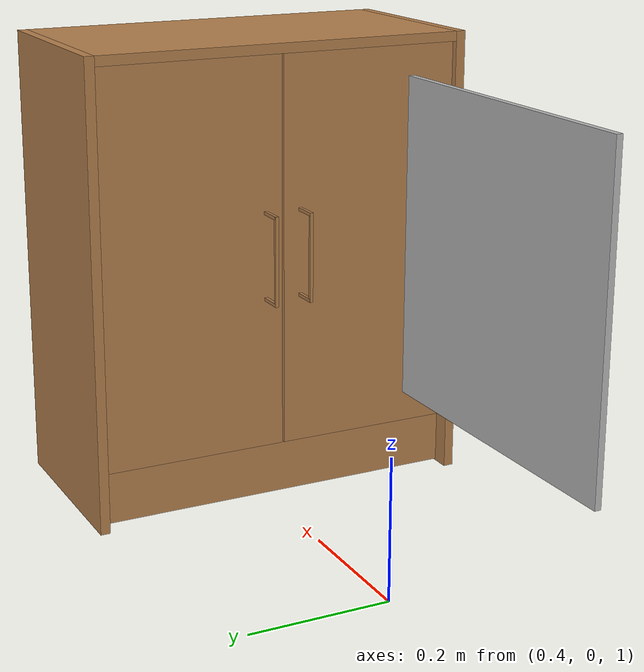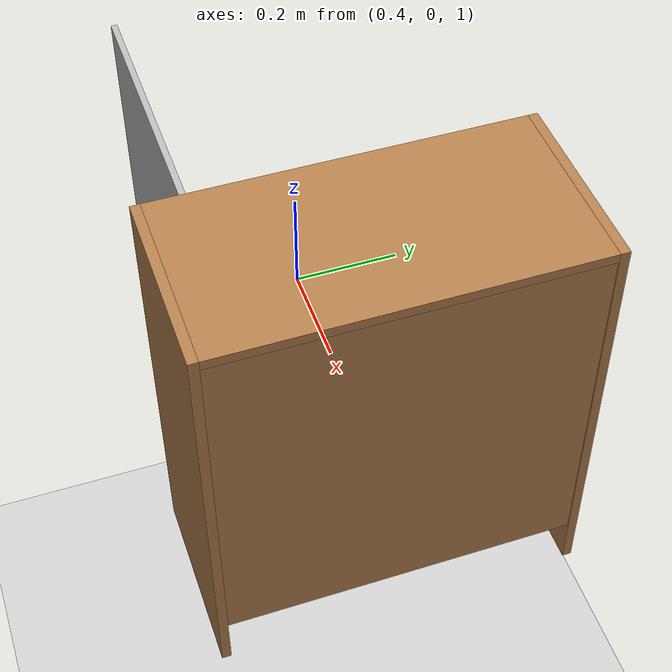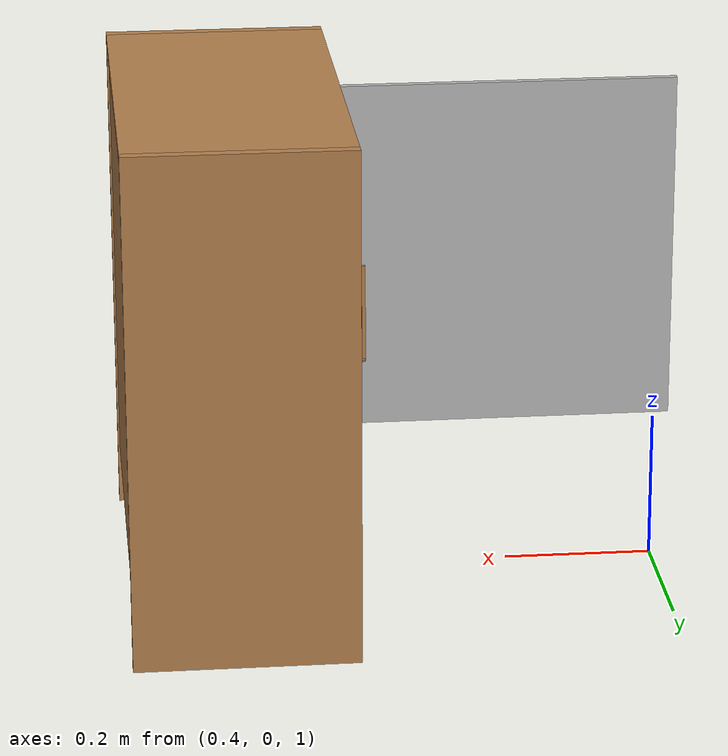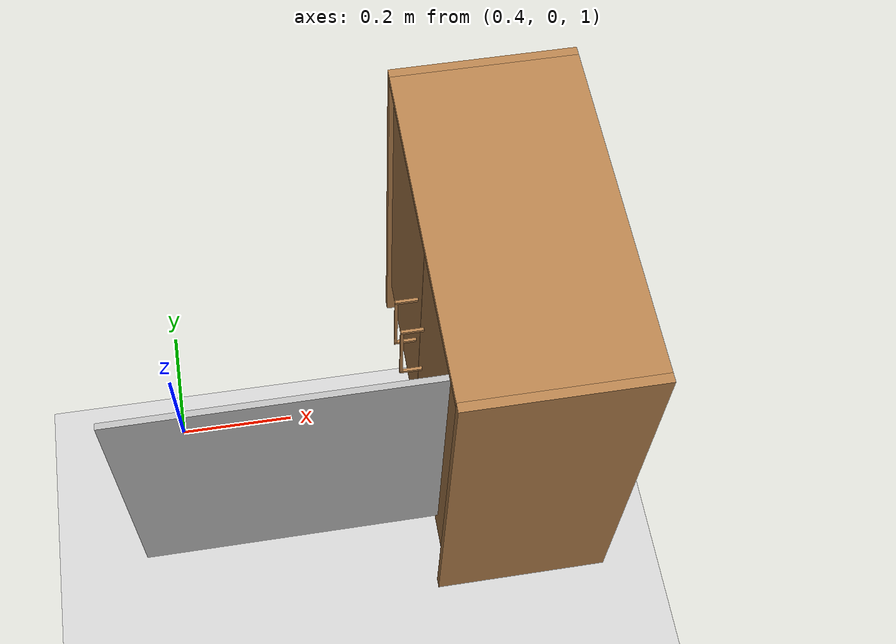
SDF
<sdf version="1.6">
 <world name="default">
  <scene>
   <ambient>0.2 0.2 0.2 1</ambient>
   <background>1 1 1 1</background>
   <shadows>0</shadows>
   <grid>0</grid>
   <origin_visual>0</origin_visual>
  </scene>
  <gravity>0 0 -9.8</gravity>
  <magnetic_field>6e-06 2.3e-05 -4.2e-05</magnetic_field>
  <atmosphere type="adiabatic"/>
  <physics name="dart_2ms" default="1" type="dart">
   <max_step_size>0.002</max_step_size>
   <real_time_factor>1</real_time_factor>
   <real_time_update_rate>500</real_time_update_rate>
  </physics>
  <spherical_coordinates>
   <surface_model>EARTH_WGS84</surface_model>
   <latitude_deg>0</latitude_deg>
   <longitude_deg>0</longitude_deg>
   <elevation>0</elevation>
   <heading_deg>0</heading_deg>
  </spherical_coordinates>
  <model name="ground_plane">
   <static>1</static>
   <link name="ground_plane::link">
    <collision name="collision">
     <geometry><plane><normal>0 0 1</normal><size>100 100</size></plane></geometry>
     <surface>
      <contact><collide_bitmask>65535</collide_bitmask></contact>
      <friction><ode><mu>100</mu><mu2>50</mu2></ode></friction>
     </surface>
    </collision>
    <visual name="visual">
     <cast_shadows>0</cast_shadows>
     <geometry><plane><normal>0 0 1</normal><size>100 100</size></plane></geometry>
     <material>
      <script><uri>file://media/materials/scripts/gazebo.material</uri><name>Gazebo/Grey</name></script>
     </material>
    </visual>
   </link>
   <pose>-0.799546 0.216315 0 0 -0 0</pose>
  </model>
  <light name="user_point_light_0" type="point">
   <pose>-1.13416 -1.8808 1 0 -0 0</pose>
   <diffuse>0.5 0.5 0.5 1</diffuse>
   <specular>0.1 0.1 0.1 1</specular>
   <attenuation>
    <range>20</range>
    <constant>0.5</constant>
    <linear>0.01</linear>
    <quadratic>0.001</quadratic>
   </attenuation>
   <cast_shadows>0</cast_shadows>
   <direction>0 0 -1</direction>
  </light>
  <model name="cabinet_door">
   <link name="cabinet">
    <pose>0 0 0.35 0 -0 0</pose>
    <inertial>
     <mass>16</mass>
     <inertia><ixx>1.59</ixx><ixy>0</ixy><ixz>0</ixz><iyy>1.12</iyy><iyz>0</iyz><izz>0.91</izz></inertia>
    </inertial>
    <collision name="back">
     <pose>-0.14 0 0.035 0 -0 0</pose>
     <geometry><box><size>0.015 0.585 0.6</size></box></geometry>
    </collision>
    <visual name="visual1">
     <pose>-0.14 0 0.035 0 -0 0</pose>
     <geometry><box><size>0.015 0.585 0.6</size></box></geometry>
     <material>
      <script><uri>file://media/materials/scripts/gazebo.material</uri><name>Gazebo/Wood</name></script>
     </material>
    </visual>
    <collision name="left_side">
     <pose>0 -0.2925 0 0 -0 0</pose>
     <geometry><box><size>0.3 0.015 0.7</size></box></geometry>
    </collision>
    <visual name="visual2">
     <pose>0 -0.2925 0 0 -0 0</pose>
     <geometry><box><size>0.3 0.015 0.7</size></box></geometry>
     <material>
      <script><uri>file://media/materials/scripts/gazebo.material</uri><name>Gazebo/Wood</name></script>
     </material>
    </visual>
    <collision name="right_side">
     <pose>0 0.2925 0 0 -0 0</pose>
     <geometry><box><size>0.3 0.015 0.7</size></box></geometry>
    </collision>
    <visual name="visual3">
     <pose>0 0.2925 0 0 -0 0</pose>
     <geometry><box><size>0.3 0.015 0.7</size></box></geometry>
     <material>
      <script><uri>file://media/materials/scripts/gazebo.material</uri><name>Gazebo/Wood</name></script>
     </material>
    </visual>
    <collision name="bottom">
     <pose>-0.002 0 -0.2525 0 -0 0</pose>
     <geometry><box><size>0.26 0.57 0.015</size></box></geometry>
    </collision>
    <visual name="visual4">
     <pose>-0.002 0 -0.2525 0 -0 0</pose>
     <geometry><box><size>0.26 0.57 0.015</size></box></geometry>
     <material>
      <script><uri>file://media/materials/scripts/gazebo.material</uri><name>Gazebo/Wood</name></script>
     </material>
    </visual>
    <collision name="top">
     <pose>0 0 0.3425 0 -0 0</pose>
     <geometry><box><size>0.3 0.57 0.015</size></box></geometry>
    </collision>
    <visual name="visual5">
     <pose>0 0 0.3425 0 -0 0</pose>
     <geometry><box><size>0.3 0.57 0.015</size></box></geometry>
     <material>
      <script><uri>file://media/materials/scripts/gazebo.material</uri><name>Gazebo/Wood</name></script>
     </material>
    </visual>
    <collision name="middle_shelf">
     <pose>-0.002 0 0.0475 0 -0 0</pose>
     <geometry><box><size>0.26 0.57 0.015</size></box></geometry>
    </collision>
    <visual name="visual6">
     <pose>-0.002 0 0.0475 0 -0 0</pose>
     <geometry><box><size>0.26 0.57 0.015</size></box></geometry>
     <material>
      <script><uri>file://media/materials/scripts/gazebo.material</uri><name>Gazebo/Wood</name></script>
     </material>
    </visual>
    <collision name="low_front">
     <pose>0.115 0 -0.3025 0 -0 0</pose>
     <geometry><box><size>0.015 0.57 0.09</size></box></geometry>
    </collision>
    <visual name="visual7">
     <pose>0.115 0 -0.3025 0 -0 0</pose>
     <geometry><box><size>0.015 0.57 0.09</size></box></geometry>
     <material>
      <script><uri>file://media/materials/scripts/gazebo.material</uri><name>Gazebo/Wood</name></script>
     </material>
    </visual>
   </link>
   <link name="right_door">
    <pose>0.135 0.2835 0.3875 0 -0 0</pose>
    <inertial>
     <mass>1.7</mass>
     <pose>0 -0.141 0 0 -0 0</pose>
     <inertia><ixx>0.06</ixx><ixy>0</ixy><ixz>0</ixz><iyy>0.49</iyy><iyz>0</iyz><izz>0.111</izz></inertia>
    </inertial>
    <collision name="right_face">
     <pose>0 -0.141 0 0 -0 0</pose>
     <geometry><box><size>0.015 0.282 0.595</size></box></geometry>
    </collision>
    <visual name="visual8">
     <pose>0 -0.141 0 0 -0 0</pose>
     <geometry><box><size>0.015 0.282 0.595</size></box></geometry>
     <material>
      <script><uri>file://media/materials/scripts/gazebo.material</uri><name>Gazebo/Wood</name></script>
     </material>
    </visual>
    <collision name="right_handle">
     <pose>0.04304 -0.2555 0 0 -0 0</pose>
     <geometry><box><size>0.005 0.005 0.136</size></box></geometry>
    </collision>
    <visual name="visual9">
     <pose>0.04304 -0.2555 0 0 -0 0</pose>
     <geometry><box><size>0.005 0.005 0.136</size></box></geometry>
     <material>
      <script><uri>file://media/materials/scripts/gazebo.material</uri><name>Gazebo/Wood</name></script>
     </material>
    </visual>
    <collision name="right_handle_up">
     <pose>0.02475 -0.2555 0.0656 0 -0 0</pose>
     <geometry><box><size>0.04 0.005 0.005</size></box></geometry>
    </collision>
    <visual name="visual10">
     <pose>0.02475 -0.2555 0.0656 0 -0 0</pose>
     <geometry><box><size>0.04 0.005 0.005</size></box></geometry>
     <material>
      <script><uri>file://media/materials/scripts/gazebo.material</uri><name>Gazebo/Wood</name></script>
     </material>
    </visual>
    <collision name="right_handle_bo">
     <pose>0.02475 -0.2555 -0.06542 0 -0 0</pose>
     <geometry><box><size>0.04 0.005 0.005</size></box></geometry>
    </collision>
    <visual name="visual11">
     <pose>0.02475 -0.2555 -0.06542 0 -0 0</pose>
     <geometry><box><size>0.04 0.005 0.005</size></box></geometry>
     <material>
      <script><uri>file://media/materials/scripts/gazebo.material</uri><name>Gazebo/Wood</name></script>
     </material>
    </visual>
    <visual name="visual_marker_0">
     <pose>0.007 -0.07 0 1.57075 0 1.57075</pose>
     <geometry><mesh><uri>model://marker_0/meshes/marker_0.dae</uri></mesh></geometry>
    </visual>
   </link>
   <joint name="right_joint" type="revolute">
    <parent>cabinet</parent>
    <child>right_door</child>
    <axis>
     <xyz>0 0 1</xyz>
     <limit><lower>-0.001</lower><upper>1.58</upper></limit>
     <dynamics>
      <damping>0.5</damping>
      <friction>0.1</friction>
      <spring_reference>0</spring_reference>
      <spring_stiffness>0</spring_stiffness>
     </dynamics>
     <use_parent_model_frame>1</use_parent_model_frame>
    </axis>
   </joint>
   <link name="left_door">
    <pose>0.135 -0.2835 0.3875 0 -0 0</pose>
    <inertial>
     <mass>1</mass>
     <pose>0 0.141 0 0 -0 0</pose>
     <inertia><ixx>0.06</ixx><ixy>0</ixy><ixz>0</ixz><iyy>0.49</iyy><iyz>0</iyz><izz>0.111</izz></inertia>
    </inertial>
    <collision name="left_face">
     <pose>0 0.141 0 0 -0 0</pose>
     <geometry><box><size>0.015 0.282 0.595</size></box></geometry>
    </collision>
    <visual name="visual12">
     <pose>0 0.141 0 0 -0 0</pose>
     <geometry><box><size>0.015 0.282 0.595</size></box></geometry>
     <material>
      <script><uri>file://media/materials/scripts/gazebo.material</uri><name>Gazebo/Wood</name></script>
     </material>
    </visual>
    <collision name="left_handle">
     <pose>0.04304 0.2555 0 0 -0 0</pose>
     <geometry><box><size>0.005 0.005 0.136</size></box></geometry>
    </collision>
    <visual name="visual13">
     <pose>0.04304 0.2555 0 0 -0 0</pose>
     <geometry><box><size>0.005 0.005 0.136</size></box></geometry>
     <material>
      <script><uri>file://media/materials/scripts/gazebo.material</uri><name>Gazebo/Wood</name></script>
     </material>
    </visual>
    <collision name="left_handle_up">
     <pose>0.02475 0.2555 0.0656 0 -0 0</pose>
     <geometry><box><size>0.04 0.005 0.005</size></box></geometry>
    </collision>
    <visual name="visual14">
     <pose>0.02475 0.2555 0.0656 0 -0 0</pose>
     <geometry><box><size>0.04 0.005 0.005</size></box></geometry>
     <material>
      <script><uri>file://media/materials/scripts/gazebo.material</uri><name>Gazebo/Wood</name></script>
     </material>
    </visual>
    <collision name="left_handle_bo">
     <pose>0.02475 0.2555 -0.06542 0 -0 0</pose>
     <geometry><box><size>0.04 0.005 0.005</size></box></geometry>
    </collision>
    <visual name="visual15">
     <pose>0.02475 0.2555 -0.06542 0 -0 0</pose>
     <geometry><box><size>0.04 0.005 0.005</size></box></geometry>
     <material>
      <script><uri>file://media/materials/scripts/gazebo.material</uri><name>Gazebo/Wood</name></script>
     </material>
    </visual>
   </link>
   <joint name="left_joint" type="revolute">
    <parent>cabinet</parent>
    <child>left_door</child>
    <axis>
     <xyz>0 0 1</xyz>
     <limit><lower>-1.58</lower><upper>0.001</upper></limit>
     <dynamics>
      <damping>0.5</damping>
      <friction>0.1</friction>
      <spring_reference>0</spring_reference>
      <spring_stiffness>0</spring_stiffness>
     </dynamics>
     <use_parent_model_frame>1</use_parent_model_frame>
    </axis>
   </joint>
   <pose>0.970451 -0.054574 0.96476 0 0 -3.13675</pose>
  </model>
 </world>
</sdf>
